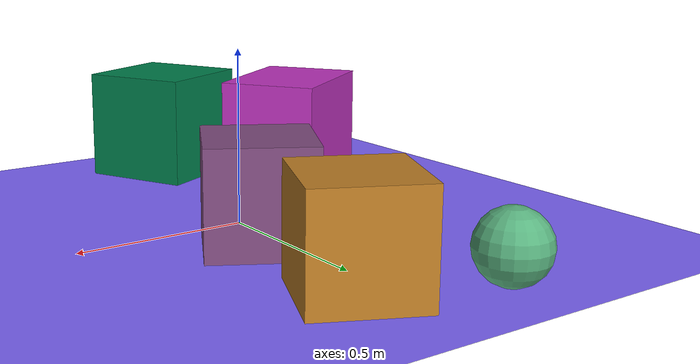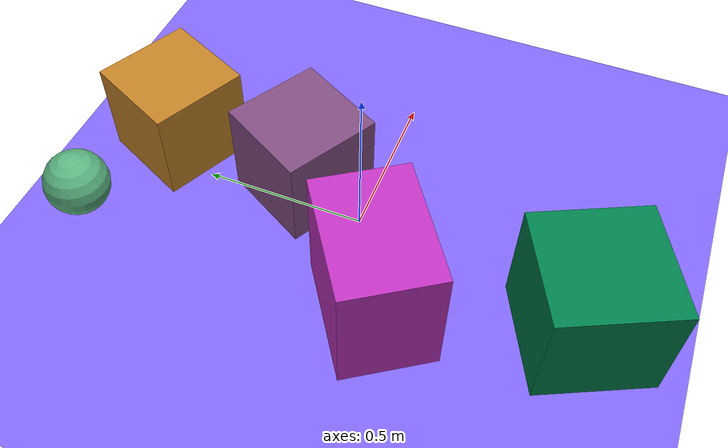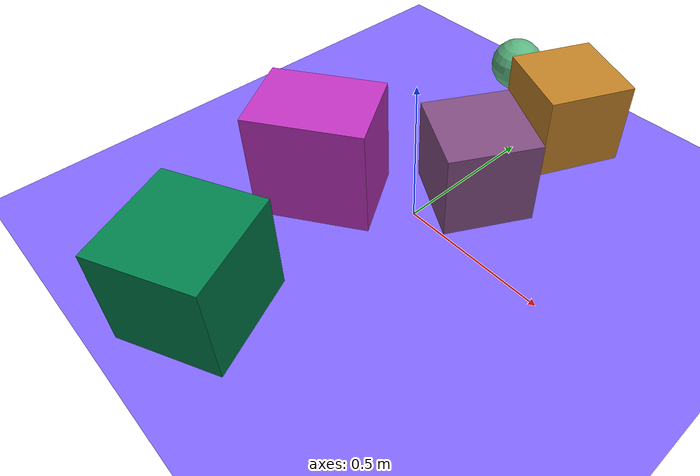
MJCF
<mujoco>
   <asset>
<texture type="skybox" builtin="gradient" rgb1="0.0 0.9 0.3" rgb2="0.1 0.6 0.5" width="256" height="256"/>
<texture name="gradient_0" builtin="gradient" rgb1="0.6 0.3 0.3" rgb2="0.4 0.3 0.7" width="200" height="200"/>
<texture name="gradient_1" builtin="gradient" rgb1="0.7 0.8 0.2" rgb2="0.8 0.2 0.1" width="200" height="200"/>
<texture name="gradient_2" builtin="gradient" rgb1="0.8 0.2 0.9" rgb2="0.7 0.2 0.6" width="200" height="200"/>
<texture name="flat_3" builtin="flat" rgb1="0.0 0.5 0.3" rgb2="0.0 0.5 0.3"  width="200" height="200"/>
<texture name="checker_4" builtin="checker" rgb1="0.6 0.9 0.8" rgb2="0.1 0.5 0.2" width="200" height="200"/><material name="gradient_0_mat" reflectance="0" texture="gradient_0" texuniform="true"/>
<material name="gradient_1_mat" reflectance="0" texture="gradient_1" texuniform="true"/>
<material name="gradient_2_mat" reflectance="0" texture="gradient_2" texuniform="true"/>
<material name="flat_3_mat" reflectance="0" texture="flat_3" texuniform="true"/>
<material name="checker_4_mat" reflectance="0" texrepeat="6 6" texture="checker_4" texuniform="false" />
   </asset>
   <worldbody>
        <light pos="1 1 2"  dir="0 0 -1" cutoff="90"/>
        <light pos="0 -1 2" dir="0 0 -1" cutoff="90"/>
     <geom type="plane" size="1 1 0.1" rgba="0.5 0.4 1.0 1"/>
<geom type="box" pos="0.07 0.21 0.15" size="0.15 0.15 0.15" material="gradient_0_mat" euler="0 0 61" />
<geom type="box" pos="0.09 0.65 0.15" size="0.15 0.15 0.15" material="gradient_1_mat" euler="0 0 65" />
<geom type="box" pos="-0.28 -0.15 0.19" size="0.19 0.14 0.19" material="gradient_2_mat" euler="0 0 34" />
<geom type="box" pos="-0.14 -0.7 0.17" size="0.17 0.17 0.17" material="flat_3_mat" euler="0 0 26" />
<geom type="sphere" pos="-0.25 0.81 0.1" size="0.1 0.1 0.1" material="checker_4_mat" euler="0 0 63" />
<camera euler="60 0 180" fovy="60" name="camera1" pos="-0.2 -1.5 1"></camera>   </worldbody>
</mujoco>
